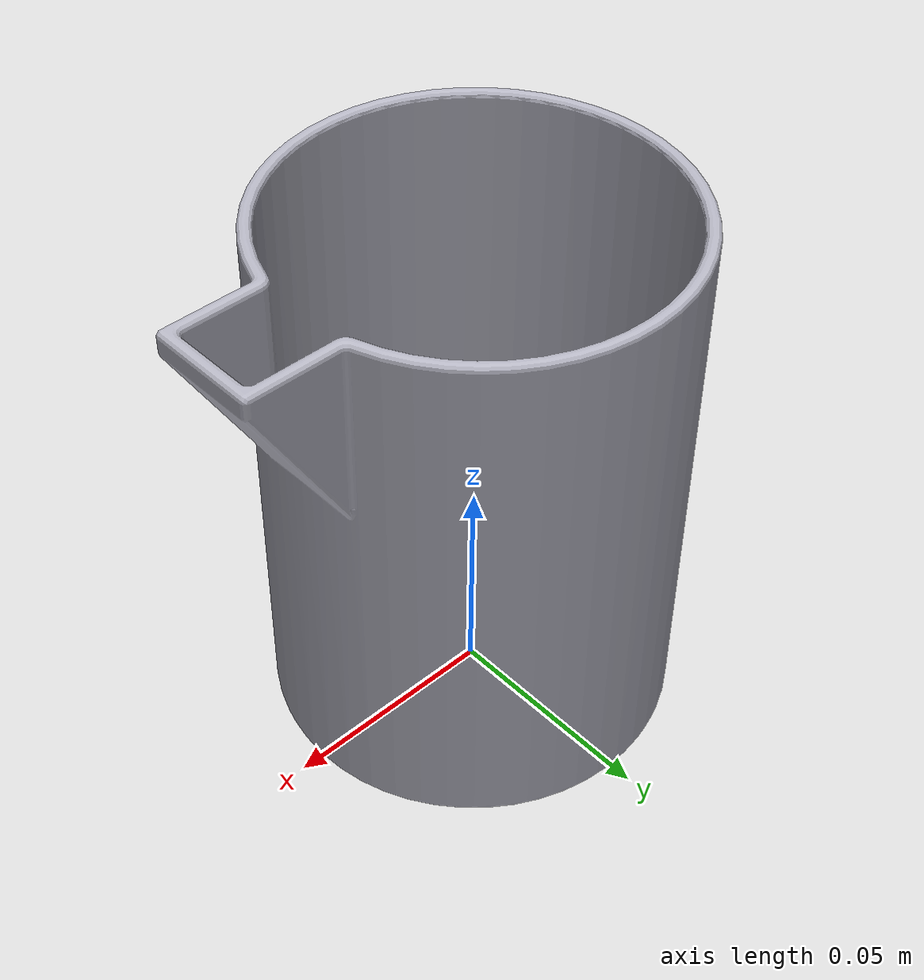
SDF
<?xml version="1.0"?>
<sdf version="1.11">
  <model name="pitcher">
    <!--Publishes the model pose for controller use later-->
    <plugin filename="gz-sim-pose-publisher-system" name="gz::sim::systems::PosePublisher">
      <publish_model_pose>true</publish_model_pose>
      <publish_link_pose>false</publish_link_pose>
      <use_pose_vector_msg>true</use_pose_vector_msg>
      <update_frequency>30</update_frequency>
    </plugin>

    <link name="link">
      <inertial auto="true"/>

      <collision name="collision">
        <density>1300</density>
        <geometry>
          <mesh optimization="convex_decomposition">
            <uri>model://pitcher/rbe501_pitcher.stl</uri>
          </mesh>
        </geometry>
      </collision>

      <visual name="visual">
        <material>
          <ambient>0.7 0.7 0.75</ambient>
          <diffuse>0.7 0.7 0.75</diffuse>
          <specular>0.8 0.8 0.8 1</specular>
        </material>

        <geometry>
          <mesh>
          <uri>model://pitcher/rbe501_pitcher.stl</uri></mesh>
        </geometry>
      </visual>
    </link>
  </model>
</sdf>
